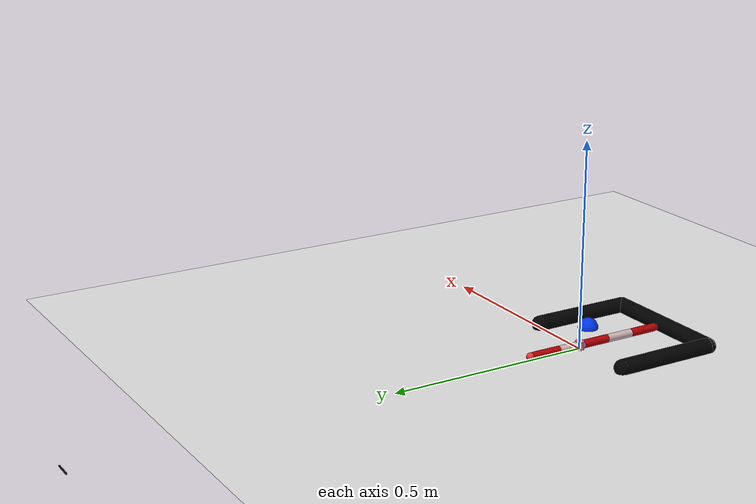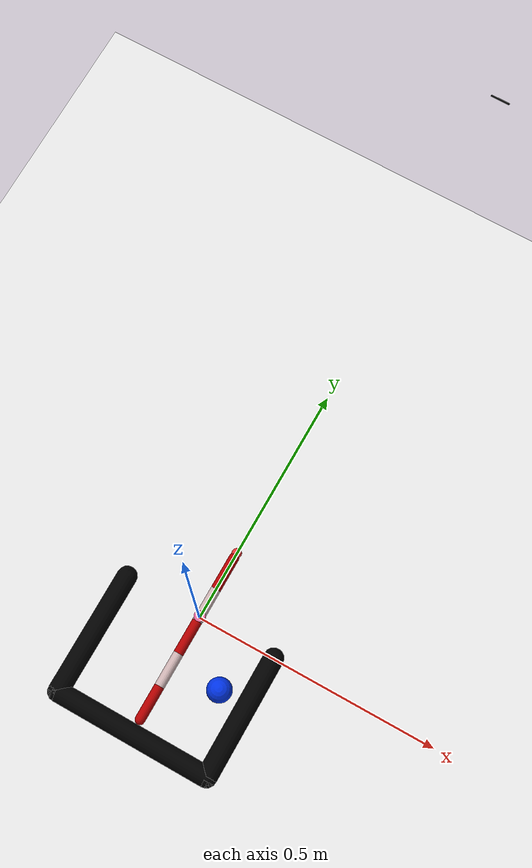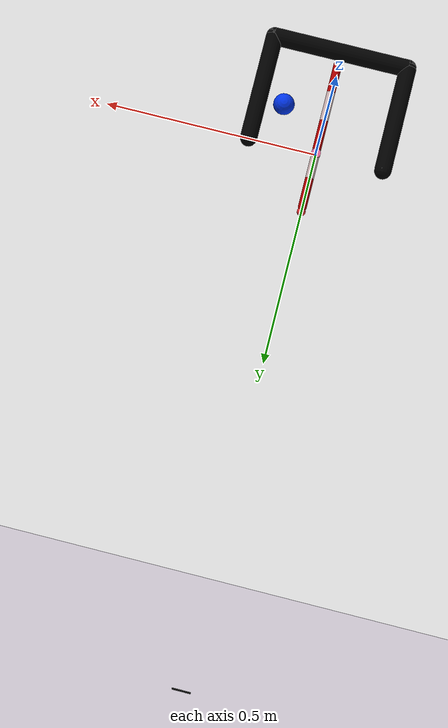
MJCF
<mujoco model="reacher">
	<compiler angle="radian" inertiafromgeom="true"/>

	<default>
		<joint armature="1" damping="1" limited="true"/>
		<geom contype="0" friction="1 0.1 0.1" rgba="0.7 0.8 0 1"/>
	</default>

	<option gravity="0 0 -9.81" integrator="RK4" timestep="0.01"/>

	<worldbody>

		<!-- Arena -->
		<geom conaffinity="0" contype="0" name="ground" pos="0 0 0" rgba="0.9 0.9 0.9 1" size="1 1 10" type="plane"/>

		<geom conaffinity="1" fromto="-0.16 -0.25  .01   0.16  -0.25  .01" name="sideS" rgba="0.0 0.0 0.0 1" size=".02" type="capsule"/>
		<geom conaffinity="1" fromto=" 0.16 -0.25  .01   0.16   0.0   .01" name="sideE" rgba="0.0 0.0 0.0 1" size=".02" type="capsule"/>
		<geom conaffinity="0" fromto="-0.02  1.25  .01   0.02   1.25  .01" name="sideN" rgba="0.0 0.0 0.0 1" size=".002" type="capsule"/>
		<geom conaffinity="1" fromto="-0.16 -0.25  .01  -0.16   0.0   .01" name="sideW" rgba="0.0 0.0 0.0 1" size=".02" type="capsule"/>

		<!-- Arm -->
		<geom conaffinity="1" contype="0" fromto="0 0 0 0 0 0.02" name="root" rgba="0.9 0.4 0.6 1" size=".011" type="cylinder"/>

		<body name="body0" pos="0 -0.22 .01">
			<joint axis="0 0 1" limited="true" name="joint0" pos="0 0 0" range="-1.57 1.57" type="hinge" damping="1" stiffness="0" />
			<geom fromto="0 0 0 0 0.07 0" name="link0" rgba="0.7 0.0 0.0 1" size=".01" type="capsule"/>

			<body name="body1" pos="0 0.07 0">
				<joint axis="0 0 1" limited="true" name="joint1" pos="0 0 0" range="-3.14 3.14" type="hinge" damping="1" stiffness="0" />
				<geom fromto="0 0 0 0 0.07 0" name="link1" rgba="0.8 0.7 0.7 1" size=".01" type="capsule"/>

				<body name="body2" pos="0 0.07 0">
					<joint axis="0 0 1" limited="true" name="joint2" pos="0 0 0" range="-3.14 3.14" type="hinge" damping="1" stiffness="0" />
					<geom fromto="0 0 0 0 0.07 0" name="link2" rgba="0.7 0.0 0.0 1" size=".01" type="capsule"/>

					<body name="body3" pos="0 0.07 0">
						<joint axis="0 0 1" limited="true" name="joint3" pos="0 0 0" range="-3.14 3.14" type="hinge" damping="1" stiffness="0" />
						<geom fromto="0 0 0 0 0.07 0" name="link3" rgba="0.8 0.7 0.7 1" size=".01" type="capsule"/>

						<body name="body4" pos="0 0.07 0">
							<joint axis="0 0 1" limited="true" name="joint4" pos="0 0 0" range="-3.14 3.14" type="hinge" damping="1" stiffness="0" />
							<geom fromto="0 0 0 0 0.07 0" name="link4" rgba="0.7 0.0 0.0 1" size=".01" type="capsule"/>

								<body name="fingertip" pos="0 0.08 0">
									<geom contype="1" name="fingertip" pos="0 0 0" rgba="0.9 0.2 0.2 1" size=".01" type="sphere"/>
								</body>

						</body>

					</body>

				</body>

			</body>

		</body>

		<!-- BALL -->
		<body name="target" pos="0.10 -0.10 0.0">
			<joint armature="1" axis="1 0 0" limited="true" name="target_x" pos="0 0 0" range="-.3 .3" ref=".1" type="slide" damping="0.1" stiffness="0" />
			<joint armature="1" axis="0 1 0" limited="true" name="target_y" pos="0 0 0" range="-.3 .3" ref="-.1" type="slide" damping="0.1" stiffness="0" />
			<geom conaffinity="3" contype="2" name="target" pos="0 0 0" rgba="0.0 0.2 0.9 1" size=".025" type="sphere"/>
		</body>

		<!-- Target -->
		<body name="real_target" pos="0.10 -0.10 0.0">
			<joint armature="1" axis="1 0 0" limited="true" name="real_target_x" pos="0 0 0" range="-2.9 2.9" ref=".1" type="slide" damping="0.1" stiffness="0" />
			<joint armature="1" axis="0 1 0" limited="true" name="real_target_y" pos="0 0 0" range="-2.9 2.9" ref="-.1" type="slide" damping="0.1" stiffness="0" />
			<geom conaffinity="0" contype="0" name="real_target" pos="0 0 0" rgba="0.0 0.8 0.5 1" size=".025" type="sphere"/>
		</body>

	</worldbody>

	<actuator>
		<position ctrllimited="true" ctrlrange="-100.0 100.0" gear="10.0" joint="joint0"/>
		<position ctrllimited="true" ctrlrange="-300.0 300.0" gear="10.0" joint="joint1"/>
		<position ctrllimited="true" ctrlrange="-300.0 300.0" gear="10.0" joint="joint2"/>
		<position ctrllimited="true" ctrlrange="-300.0 300.0" gear="10.0" joint="joint3"/>
		<position ctrllimited="true" ctrlrange="-300.0 300.0" gear="10.0" joint="joint4"/>
	</actuator>

</mujoco>
